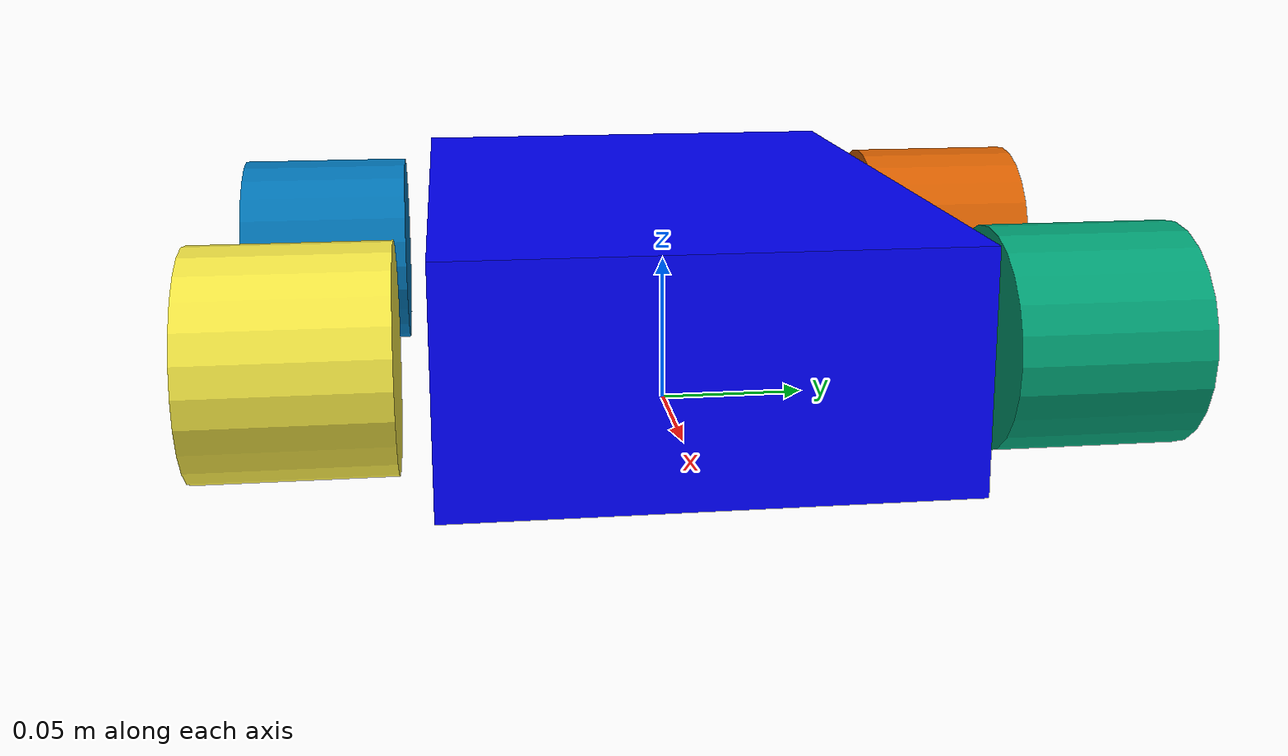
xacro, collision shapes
<?xml version="1.0" ?>
<robot name="omni4wheels" xmlns:xacro="http://ros.org/wiki/xacro">
  <xacro:arg name="robot_ns" default="omni"/>
  <!--xacro:arg name="pi" default="3.14159"/-->
  <xacro:include filename="$(find my_ugv_description)/urdf/omni_robot_4wheels_gazebo.xacro"/>

  <!-- Robot Gazebo Controller -->
  <xacro:servomotor_controller />

  <!-- Robot Definition. Note: Since a controller is used for each wheel, the ns is used for a correct robot visualization in RViz when using several robots -->
  <link name="$(arg robot_ns)/base_footprint"/>

  <joint name="base_joint" type="fixed">
    <parent link="$(arg robot_ns)/base_footprint"/>
    <child link="$(arg robot_ns)/base_link"/>
    <origin xyz="0.0 0.0 0.04" rpy="0 0 0"/>
  </joint>

  <link name="$(arg robot_ns)/base_link">
    <visual>
      <origin xyz="0 0 0.025" rpy="0 0 0"/>
      <geometry>
        <box size="0.24 0.16 0.02"/><!-- Main block -->
      </geometry>
      <material name="blue">
        <color rgba="0.0 0.0 ${250/255} 1.0"/> <!-- Definition of the blue color (for RViz) -->
      </material>
    </visual>
    <!-- Frontal part to define the robot orientation and motors -->
    <visual>
      <origin xyz="0.11 0 0.04" rpy="0 0 0"/>
      <geometry>
        <box size="0.02 0.08 0.01"/>
      </geometry>
    </visual>
    <visual>
      <origin xyz="0.08 0.06 0" rpy="1.57 0 0"/>
      <geometry>
        <cylinder length="0.06" radius="0.015"/>
      </geometry>
    </visual>
    <visual>
      <origin xyz="0.08 -0.06 0" rpy="1.57 0 0"/>
      <geometry>
        <cylinder length="0.06" radius="0.015"/>
      </geometry>
    </visual>
    <visual>
      <origin xyz="-0.08 -0.06 0" rpy="1.57 0 0"/>
      <geometry>
        <cylinder length="0.06" radius="0.015"/>
      </geometry>
    </visual>
    <visual>
      <origin xyz="-0.08 0.06 0" rpy="1.57 0 0"/>
      <geometry>
        <cylinder length="0.06" radius="0.015"/>
      </geometry>
    </visual>

    <collision>
      <origin xyz="0 0 0" rpy="0 0 0"/>
      <geometry>
        <box size="0.24 0.16 0.075"/> <!--For an omnidirectional robot, the base_link must touch the ground. Different from visual tag -->
      </geometry>
    </collision>
    <inertial>
      <origin xyz="0 0 0" rpy="0 0 0"/>
      <mass value="8.25e-1"/>
      <inertia ixx="2.133" ixy="0" ixz="0" iyy="4.266" iyz="0" izz="5.546" /><!-- To obtain an acceptable motion, inertia must be large enough, not the corresponding collision body -->
    </inertial>
  </link>

  <!-- Wheels definition (joints and links) -->
  <joint name="wheel1_joint" type="continuous"> <!-- Front left wheel -->
    <parent link="$(arg robot_ns)/base_link"/>
    <child link="$(arg robot_ns)/wheel1_link"/>
    <origin xyz="0.08 0.12 0" rpy="-1.57 0 0"/>
    <axis xyz="0 0 1"/>
    <!--dynamics damping="0.0" friction="0.0"/--><!-- Due to the wheel will not touch the ground, this parameter may be ommited-->
  </joint>

  <link name="$(arg robot_ns)/wheel1_link">
    <visual>
      <origin xyz="0 0 0" rpy="-1.57 0 0"/>
      <geometry>
        <mesh filename="package://my_ugv_description/meshes/left_mecanum_wheel.dae" scale="0.8 0.8 0.8"/> <!-- If scale=0.8, r=0.04 l=0.06 -->
      </geometry>
    </visual>
    <collision>
      <origin xyz="0 0 0" rpy="0 0 0"/>
      <geometry>
        <cylinder length="0.06" radius="0.035"/> <!-- To avoid a disturbance on the mobile robot, the wheel must not touch the ground -->
      </geometry>
    </collision>
    <inertial>
      <origin xyz="0 0 0" />
      <mass value="1e-1" />
      <inertia ixx="6.1e-5" ixy="0" ixz="0" iyy="6.1e-5" iyz="0" izz="6.1e-5" /><!-- Using r=0.035 -->
    </inertial>
  </link>

  <joint name="wheel2_joint" type="continuous"> <!-- Front right wheel -->
    <parent link="$(arg robot_ns)/base_link"/>
    <child link="$(arg robot_ns)/wheel2_link"/>
    <origin xyz="0.08 -0.12 0" rpy="-1.57 0 0"/>
    <axis xyz="0 0 1"/>
  </joint>

  <link name="$(arg robot_ns)/wheel2_link">
    <visual>
      <origin xyz="0 0 0" rpy="-1.57 0 0"/>
      <geometry>
        <mesh filename="package://my_ugv_description/meshes/right_mecanum_wheel.dae" scale="0.8 0.8 0.8"/>
      </geometry>
    </visual>
    <collision>
      <origin xyz="0 0 0" rpy="0 0 0"/>
      <geometry>
        <cylinder length="0.06" radius="0.035"/>
      </geometry>
    </collision>
    <inertial>
      <origin xyz="0 0 0" />
      <mass value="1e-1" />
      <inertia ixx="6.1e-5" ixy="0" ixz="0" iyy="6.1e-5" iyz="0" izz="6.1e-5" />
    </inertial>
  </link>

  <joint name="wheel3_joint" type="continuous"> <!-- Back right wheel -->
    <parent link="$(arg robot_ns)/base_link"/>
    <child link="$(arg robot_ns)/wheel3_link"/>
    <origin xyz="-0.08 -0.12 0" rpy="-1.57 0 0"/>
    <axis xyz="0 0 1"/>
  </joint>

  <link name="$(arg robot_ns)/wheel3_link">
    <visual>
      <origin xyz="0 0 0" rpy="-1.57 0 0"/>
      <geometry>
        <mesh filename="package://my_ugv_description/meshes/left_mecanum_wheel.dae" scale="0.8 0.8 0.8"/>
      </geometry>
    </visual>
    <collision>
      <origin xyz="0 0 0" rpy="0 0 0"/>
      <geometry>
        <cylinder length="0.06" radius="0.035"/>
      </geometry>
    </collision>
    <inertial>
      <origin xyz="0 0 0" />
      <mass value="1e-1" />
      <inertia ixx="6.1e-5" ixy="0" ixz="0" iyy="6.1e-5" iyz="0" izz="6.1e-5" />
    </inertial>
  </link>

  <joint name="wheel4_joint" type="continuous"> <!-- Back left wheel -->
    <parent link="$(arg robot_ns)/base_link"/>
    <child link="$(arg robot_ns)/wheel4_link"/>
    <origin xyz="-0.08 0.12 0" rpy="-1.57 0 0"/>
    <axis xyz="0 0 1"/>
  </joint>

  <link name="$(arg robot_ns)/wheel4_link">
    <visual>
      <origin xyz="0 0 0" rpy="-1.57 0 0"/>
      <geometry>
        <mesh filename="package://my_ugv_description/meshes/right_mecanum_wheel.dae" scale="0.8 0.8 0.8"/>
      </geometry>
    </visual>
    <collision>
      <origin xyz="0 0 0" rpy="0 0 0"/>
      <geometry>
        <cylinder length="0.06" radius="0.035"/>
      </geometry>
    </collision>
    <inertial>
      <origin xyz="0 0 0" />
      <mass value="1e-1" />
      <inertia ixx="6.1e-5" ixy="0" ixz="0" iyy="6.1e-5" iyz="0" izz="6.1e-5" />
    </inertial>
  </link>

  <!-- Transmisisons of each wheel joint -->
  <transmission name="tran1">
    <type>transmission_interface/SimpleTransmission</type>
    <joint name="wheel1_joint">
      <hardwareInterface>hardware_interface/EffortJointInterface</hardwareInterface><!-- Since hardware_interface::VelocityJointInterface is not fully implemented, we will use EffortJointInterface -->
    </joint>
    <actuator name="motor1">
      <hardwareInterface>hardware_interface/EffortJointInterface</hardwareInterface>
      <!-- This tag does not any change in simulation -->
    </actuator>
  </transmission>
  <transmission name="tran2">
    <type>transmission_interface/SimpleTransmission</type>
    <joint name="wheel2_joint">
      <hardwareInterface>hardware_interface/EffortJointInterface</hardwareInterface>
    </joint>
    <actuator name="motor2">
      <hardwareInterface>hardware_interface/EffortJointInterface</hardwareInterface>
    </actuator>
  </transmission>
  <transmission name="tran3">
    <type>transmission_interface/SimpleTransmission</type>
    <joint name="wheel3_joint">
      <hardwareInterface>hardware_interface/EffortJointInterface</hardwareInterface>
    </joint>
    <actuator name="motor3">
      <hardwareInterface>hardware_interface/EffortJointInterface</hardwareInterface>
    </actuator>
  </transmission>
  <transmission name="tran4">
    <type>transmission_interface/SimpleTransmission</type>
    <joint name="wheel4_joint">
      <hardwareInterface>hardware_interface/EffortJointInterface</hardwareInterface>
    </joint>
    <actuator name="motor4">
      <hardwareInterface>hardware_interface/EffortJointInterface</hardwareInterface>
    </actuator>
  </transmission>

</robot>
